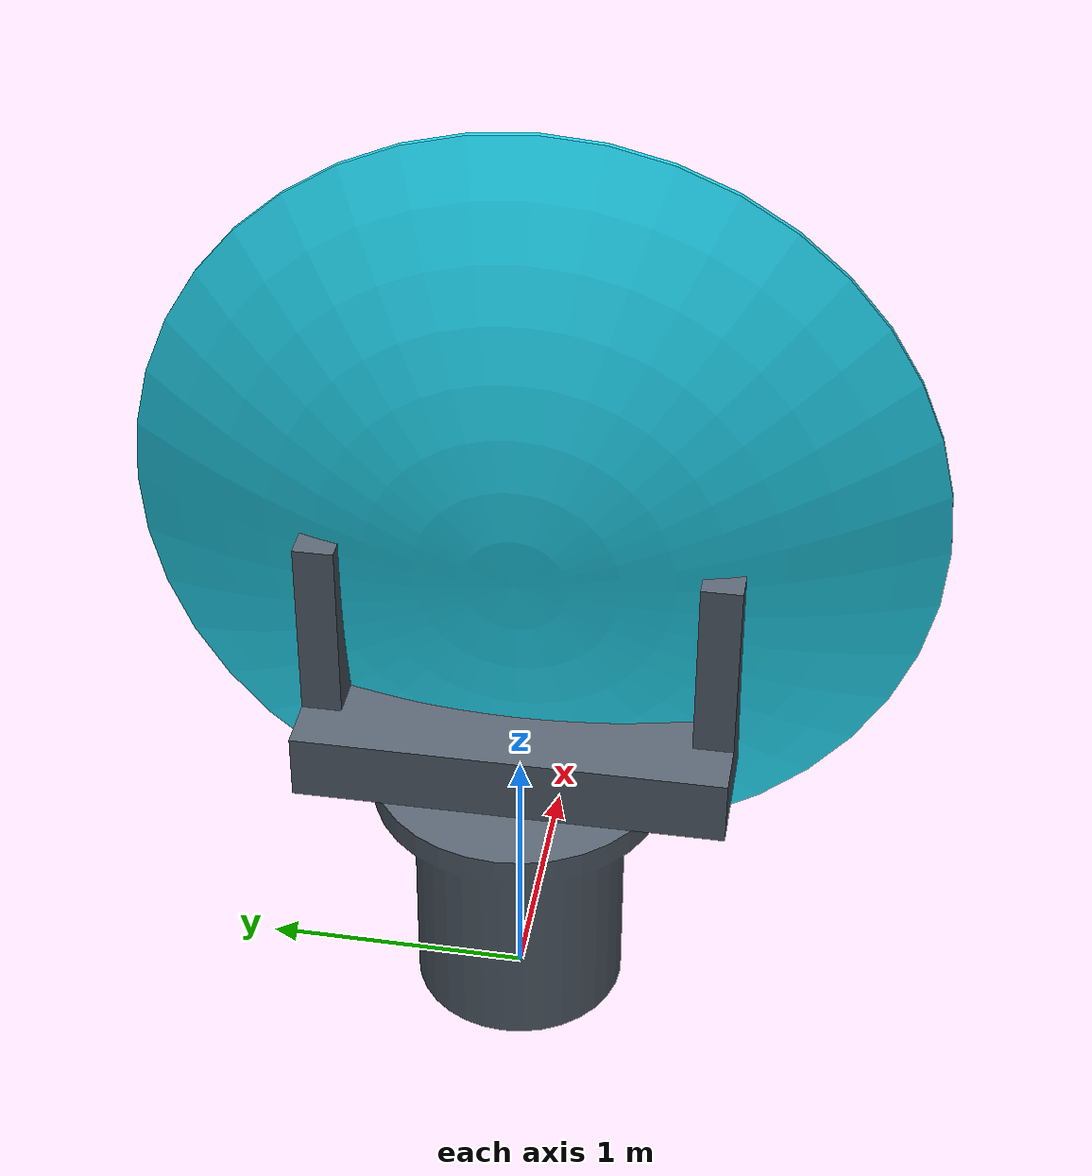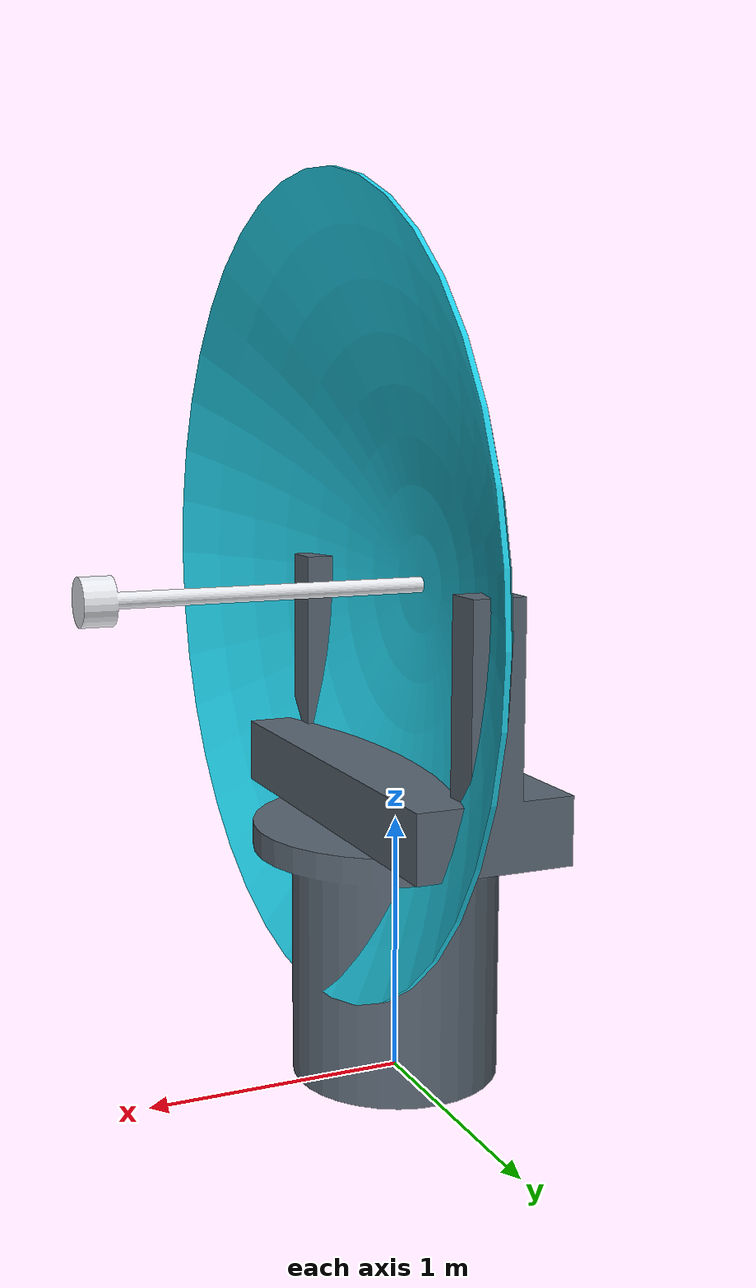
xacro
<?xml version="1.0"?>
<robot xmlns:xacro="http://www.ros.org/wiki/xacro" name="antena_atp">

  <xacro:arg name="hw" default="sim"/>
  <xacro:arg name="az0" default="0.0"/>           <!-- posicion inicial, rad -->
  <xacro:arg name="el0" default="0.5236"/>
  <xacro:arg name="u_max" default="8.0"/>         <!-- tope de par, N m -->
  <xacro:arg name="J" default="2.0"/>
  <xacro:arg name="b" default="0.5"/>
  <xacro:arg name="vel_max_deg_s" default="0.0"/> <!-- <=0: sin tope -->
  <xacro:arg name="coulomb_nm" default="0.0"/>
  <xacro:arg name="stribeck_nm" default="0.0"/>
  <xacro:arg name="backlash_deg" default="0.0"/>
  <xacro:arg name="unbalance_nm" default="0.0"/>
  <xacro:arg name="encoder_bits" default="0"/>
  <xacro:arg name="serial_port" default="fake"/>  <!-- fake o /dev/ttyUSB0 -->
  <xacro:arg name="serial_baud" default="921600"/>
  <xacro:arg name="controllers_file" default=""/> <!-- solo hw:=gz -->
  <xacro:arg name="tema" default="base"/>        <!-- base | code (paleta Co.De Aerospace, solo color) -->

  <xacro:include filename="$(find atp_description)/urdf/antena.ros2_control.xacro"/>

  <xacro:property name="tema" value="$(arg tema)"/>
  <xacro:if value="${tema == 'code'}">
    <!-- paleta Co.De Aerospace (marca/paleta.json) en espacio LINEAL (Gazebo no aplica gamma):
         plato = plata #F2F3F4, pedestal = tenue #8E99A6, alimentador = ambar #F59E0B -->
    <material name="cian"><color rgba="0.888 0.896 0.905 1"/></material>
    <material name="gris"><color rgba="0.271 0.318 0.381 1"/></material>
    <material name="blanco"><color rgba="0.913 0.342 0.0033 1"/></material>
  </xacro:if>
  <xacro:unless value="${tema == 'code'}">
    <material name="cian"><color rgba="0.13 0.83 0.93 1"/></material>
    <material name="gris"><color rgba="0.35 0.40 0.45 1"/></material>
    <material name="blanco"><color rgba="0.92 0.93 0.95 1"/></material>
  </xacro:unless>

  <!-- inercia esferica (ixx = iyy = izz = i): J no depende de la elevacion -->
  <xacro:macro name="inercia_esf" params="m i">
    <inertial>
      <origin xyz="0 0 0"/>
      <mass value="${m}"/>
      <inertia ixx="${i}" iyy="${i}" izz="${i}" ixy="0" ixz="0" iyz="0"/>
    </inertial>
  </xacro:macro>

  <link name="world"/>

  <link name="base_link">
    <inertial>
      <origin xyz="0 0 0.5"/><mass value="400"/>
      <inertia ixx="40" iyy="40" izz="30" ixy="0" ixz="0" iyz="0"/>
    </inertial>
    <visual>
      <geometry><mesh filename="package://atp_description/meshes/pedestal.stl"/></geometry>
      <material name="gris"/>
    </visual>
    <collision>
      <origin xyz="0 0 0.5"/>
      <geometry><cylinder radius="0.4" length="1.0"/></geometry>
    </collision>
  </link>
  <joint name="base_fijo" type="fixed">
    <parent link="world"/><child link="base_link"/><origin xyz="0 0 0"/>
  </joint>

  <!-- Cuerpo de acimut: 0.01 kg m^2 sobre el eje Z; con el el_link (2.0) da J_az = 2.01 -->
  <link name="az_link">
    <inertial>
      <origin xyz="0 0 0"/><mass value="30"/>
      <inertia ixx="0.01" iyy="0.01" izz="0.01" ixy="0" ixz="0" iyz="0"/>
    </inertial>
    <visual>
      <geometry><mesh filename="package://atp_description/meshes/yugo.stl"/></geometry>
      <material name="gris"/>
    </visual>
    <collision>
      <origin xyz="0 0 0.15"/>
      <geometry><box size="0.6 1.6 0.3"/></geometry>
    </collision>
  </link>
  <joint name="az" type="continuous">
    <parent link="base_link"/><child link="az_link"/>
    <origin xyz="0 0 1.0"/><axis xyz="0 0 1"/>
    <dynamics damping="$(arg b)" friction="0.0"/>
    <limit effort="$(arg u_max)" velocity="3.0"/>
  </joint>

  <link name="el_link">
    <xacro:inercia_esf m="60" i="$(arg J)"/>
    <visual>
      <origin xyz="-0.1 0 0"/>
      <geometry><mesh filename="package://atp_description/meshes/plato.stl"/></geometry>
      <material name="cian"/>
    </visual>
    <visual>
      <origin xyz="-0.1 0 0" rpy="0 1.5708 0"/>
      <geometry><mesh filename="package://atp_description/meshes/alimentador.stl"/></geometry>
      <material name="blanco"/>
    </visual>
    <collision>
      <origin xyz="0.15 0 0" rpy="0 1.5708 0"/>
      <geometry><cylinder radius="1.5" length="0.12"/></geometry>
    </collision>
  </link>
  <joint name="el" type="revolute">
    <parent link="az_link"/><child link="el_link"/>
    <origin xyz="0 0 0.9"/><axis xyz="0 -1 0"/>
    <dynamics damping="$(arg b)" friction="0.0"/>
    <limit lower="0" upper="3.14159" effort="$(arg u_max)" velocity="3.0"/>
  </joint>

  <!-- punto de apuntamiento: delante del plato, para ver la linea de vista -->
  <link name="boresight"/>
  <joint name="boresight_joint" type="fixed">
    <parent link="el_link"/><child link="boresight"/><origin xyz="1.55 0 0"/>
  </joint>

  <xacro:atp_ros2_control hw="$(arg hw)"/>
</robot>
